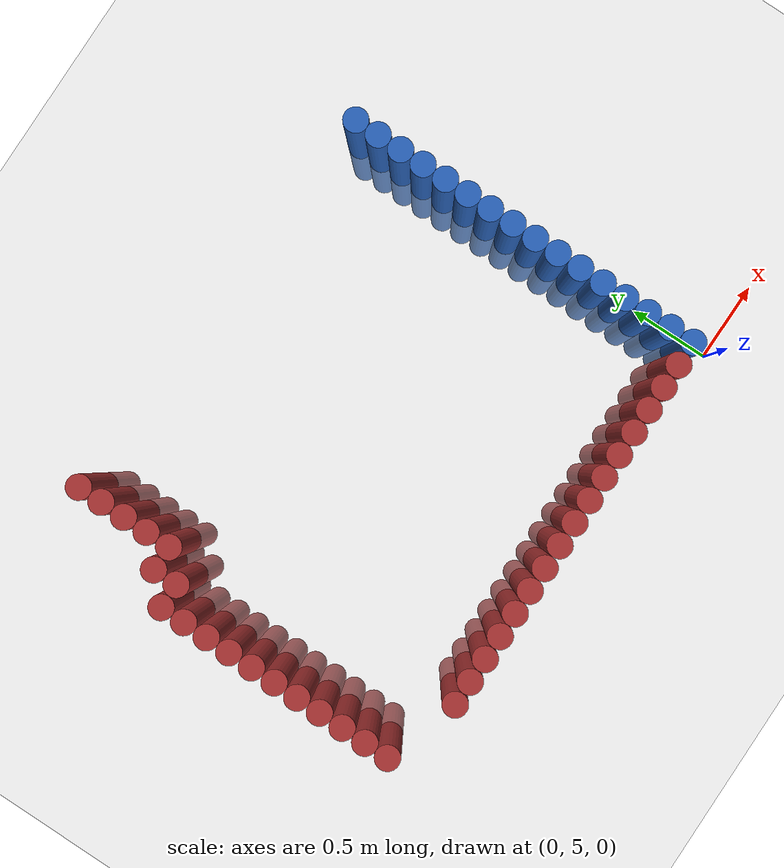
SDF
<sdf version="1.6">
 <world name="default">
  <model name="ground_plane">
   <static>1</static>
   <link name="link">
    <collision name="collision">
     <geometry><plane><normal>0 0 1</normal><size>100 100</size></plane></geometry>
     <surface><friction><ode><mu>100</mu><mu2>50</mu2></ode></friction></surface>
    </collision>
    <visual name="visual">
     <cast_shadows>0</cast_shadows>
     <geometry><plane><normal>0 0 1</normal><size>100 100</size></plane></geometry>
     <material>
      <script><uri>file://media/materials/scripts/gazebo.material</uri><name>Gazebo/Grey</name></script>
     </material>
    </visual>
   </link>
  </model>
  <model name="unit_cylinder_258">
   <static>1</static>
   <pose>-2.925000 5.325000 0.000000 0.000000 0.000000 0.000000</pose>
   <link name="link">
    <inertial>
     <mass>1</mass>
     <inertia><ixx>0.145833</ixx><ixy>0</ixy><ixz>0</ixz><iyy>0.145833</iyy><iyz>0</iyz><izz>0.125</izz></inertia>
    </inertial>
    <collision name="collision">
     <geometry><cylinder><radius>0.075000</radius><length>1</length></cylinder></geometry>
    </collision>
    <visual name="visual">
     <geometry><cylinder><radius>0.075000</radius><length>1</length></cylinder></geometry>
     <material>
      <ambient>0.648000 0.192000 0.192000 1</ambient>
      <diffuse>0.648000 0.192000 0.192000 1</diffuse>
     </material>
     <material>
      <script><name>Gazebo/Grey</name><uri>file://media/materials/scripts/gazebo.material</uri></script>
     </material>
    </visual>
   </link>
  </model>
  <model name="unit_cylinder_259">
   <static>1</static>
   <pose>-2.925000 5.475000 0.000000 0.000000 0.000000 0.000000</pose>
   <link name="link">
    <inertial>
     <mass>1</mass>
     <inertia><ixx>0.145833</ixx><ixy>0</ixy><ixz>0</ixz><iyy>0.145833</iyy><iyz>0</iyz><izz>0.125</izz></inertia>
    </inertial>
    <collision name="collision">
     <geometry><cylinder><radius>0.075000</radius><length>1</length></cylinder></geometry>
    </collision>
    <visual name="visual">
     <geometry><cylinder><radius>0.075000</radius><length>1</length></cylinder></geometry>
     <material>
      <ambient>0.648000 0.192000 0.192000 1</ambient>
      <diffuse>0.648000 0.192000 0.192000 1</diffuse>
     </material>
     <material>
      <script><name>Gazebo/Grey</name><uri>file://media/materials/scripts/gazebo.material</uri></script>
     </material>
    </visual>
   </link>
  </model>
  <model name="unit_cylinder_260">
   <static>1</static>
   <pose>-2.925000 5.625000 0.000000 0.000000 0.000000 0.000000</pose>
   <link name="link">
    <inertial>
     <mass>1</mass>
     <inertia><ixx>0.145833</ixx><ixy>0</ixy><ixz>0</ixz><iyy>0.145833</iyy><iyz>0</iyz><izz>0.125</izz></inertia>
    </inertial>
    <collision name="collision">
     <geometry><cylinder><radius>0.075000</radius><length>1</length></cylinder></geometry>
    </collision>
    <visual name="visual">
     <geometry><cylinder><radius>0.075000</radius><length>1</length></cylinder></geometry>
     <material>
      <ambient>0.648000 0.192000 0.192000 1</ambient>
      <diffuse>0.648000 0.192000 0.192000 1</diffuse>
     </material>
     <material>
      <script><name>Gazebo/Grey</name><uri>file://media/materials/scripts/gazebo.material</uri></script>
     </material>
    </visual>
   </link>
  </model>
  <model name="unit_cylinder_261">
   <static>1</static>
   <pose>-2.925000 5.775000 0.000000 0.000000 0.000000 0.000000</pose>
   <link name="link">
    <inertial>
     <mass>1</mass>
     <inertia><ixx>0.145833</ixx><ixy>0</ixy><ixz>0</ixz><iyy>0.145833</iyy><iyz>0</iyz><izz>0.125</izz></inertia>
    </inertial>
    <collision name="collision">
     <geometry><cylinder><radius>0.075000</radius><length>1</length></cylinder></geometry>
    </collision>
    <visual name="visual">
     <geometry><cylinder><radius>0.075000</radius><length>1</length></cylinder></geometry>
     <material>
      <ambient>0.648000 0.192000 0.192000 1</ambient>
      <diffuse>0.648000 0.192000 0.192000 1</diffuse>
     </material>
     <material>
      <script><name>Gazebo/Grey</name><uri>file://media/materials/scripts/gazebo.material</uri></script>
     </material>
    </visual>
   </link>
  </model>
  <model name="unit_cylinder_262">
   <static>1</static>
   <pose>-2.925000 5.925000 0.000000 0.000000 0.000000 0.000000</pose>
   <link name="link">
    <inertial>
     <mass>1</mass>
     <inertia><ixx>0.145833</ixx><ixy>0</ixy><ixz>0</ixz><iyy>0.145833</iyy><iyz>0</iyz><izz>0.125</izz></inertia>
    </inertial>
    <collision name="collision">
     <geometry><cylinder><radius>0.075000</radius><length>1</length></cylinder></geometry>
    </collision>
    <visual name="visual">
     <geometry><cylinder><radius>0.075000</radius><length>1</length></cylinder></geometry>
     <material>
      <ambient>0.648000 0.192000 0.192000 1</ambient>
      <diffuse>0.648000 0.192000 0.192000 1</diffuse>
     </material>
     <material>
      <script><name>Gazebo/Grey</name><uri>file://media/materials/scripts/gazebo.material</uri></script>
     </material>
    </visual>
   </link>
  </model>
  <model name="unit_cylinder_263">
   <static>1</static>
   <pose>-2.925000 6.075000 0.000000 0.000000 0.000000 0.000000</pose>
   <link name="link">
    <inertial>
     <mass>1</mass>
     <inertia><ixx>0.145833</ixx><ixy>0</ixy><ixz>0</ixz><iyy>0.145833</iyy><iyz>0</iyz><izz>0.125</izz></inertia>
    </inertial>
    <collision name="collision">
     <geometry><cylinder><radius>0.075000</radius><length>1</length></cylinder></geometry>
    </collision>
    <visual name="visual">
     <geometry><cylinder><radius>0.075000</radius><length>1</length></cylinder></geometry>
     <material>
      <ambient>0.648000 0.192000 0.192000 1</ambient>
      <diffuse>0.648000 0.192000 0.192000 1</diffuse>
     </material>
     <material>
      <script><name>Gazebo/Grey</name><uri>file://media/materials/scripts/gazebo.material</uri></script>
     </material>
    </visual>
   </link>
  </model>
  <model name="unit_cylinder_264">
   <static>1</static>
   <pose>-2.925000 6.225000 0.000000 0.000000 0.000000 0.000000</pose>
   <link name="link">
    <inertial>
     <mass>1</mass>
     <inertia><ixx>0.145833</ixx><ixy>0</ixy><ixz>0</ixz><iyy>0.145833</iyy><iyz>0</iyz><izz>0.125</izz></inertia>
    </inertial>
    <collision name="collision">
     <geometry><cylinder><radius>0.075000</radius><length>1</length></cylinder></geometry>
    </collision>
    <visual name="visual">
     <geometry><cylinder><radius>0.075000</radius><length>1</length></cylinder></geometry>
     <material>
      <ambient>0.648000 0.192000 0.192000 1</ambient>
      <diffuse>0.648000 0.192000 0.192000 1</diffuse>
     </material>
     <material>
      <script><name>Gazebo/Grey</name><uri>file://media/materials/scripts/gazebo.material</uri></script>
     </material>
    </visual>
   </link>
  </model>
  <model name="unit_cylinder_265">
   <static>1</static>
   <pose>-2.925000 6.375000 0.000000 0.000000 0.000000 0.000000</pose>
   <link name="link">
    <inertial>
     <mass>1</mass>
     <inertia><ixx>0.145833</ixx><ixy>0</ixy><ixz>0</ixz><iyy>0.145833</iyy><iyz>0</iyz><izz>0.125</izz></inertia>
    </inertial>
    <collision name="collision">
     <geometry><cylinder><radius>0.075000</radius><length>1</length></cylinder></geometry>
    </collision>
    <visual name="visual">
     <geometry><cylinder><radius>0.075000</radius><length>1</length></cylinder></geometry>
     <material>
      <ambient>0.648000 0.192000 0.192000 1</ambient>
      <diffuse>0.648000 0.192000 0.192000 1</diffuse>
     </material>
     <material>
      <script><name>Gazebo/Grey</name><uri>file://media/materials/scripts/gazebo.material</uri></script>
     </material>
    </visual>
   </link>
  </model>
  <model name="unit_cylinder_266">
   <static>1</static>
   <pose>-2.925000 6.525000 0.000000 0.000000 0.000000 0.000000</pose>
   <link name="link">
    <inertial>
     <mass>1</mass>
     <inertia><ixx>0.145833</ixx><ixy>0</ixy><ixz>0</ixz><iyy>0.145833</iyy><iyz>0</iyz><izz>0.125</izz></inertia>
    </inertial>
    <collision name="collision">
     <geometry><cylinder><radius>0.075000</radius><length>1</length></cylinder></geometry>
    </collision>
    <visual name="visual">
     <geometry><cylinder><radius>0.075000</radius><length>1</length></cylinder></geometry>
     <material>
      <ambient>0.648000 0.192000 0.192000 1</ambient>
      <diffuse>0.648000 0.192000 0.192000 1</diffuse>
     </material>
     <material>
      <script><name>Gazebo/Grey</name><uri>file://media/materials/scripts/gazebo.material</uri></script>
     </material>
    </visual>
   </link>
  </model>
  <model name="unit_cylinder_267">
   <static>1</static>
   <pose>-2.925000 6.675000 0.000000 0.000000 0.000000 0.000000</pose>
   <link name="link">
    <inertial>
     <mass>1</mass>
     <inertia><ixx>0.145833</ixx><ixy>0</ixy><ixz>0</ixz><iyy>0.145833</iyy><iyz>0</iyz><izz>0.125</izz></inertia>
    </inertial>
    <collision name="collision">
     <geometry><cylinder><radius>0.075000</radius><length>1</length></cylinder></geometry>
    </collision>
    <visual name="visual">
     <geometry><cylinder><radius>0.075000</radius><length>1</length></cylinder></geometry>
     <material>
      <ambient>0.648000 0.192000 0.192000 1</ambient>
      <diffuse>0.648000 0.192000 0.192000 1</diffuse>
     </material>
     <material>
      <script><name>Gazebo/Grey</name><uri>file://media/materials/scripts/gazebo.material</uri></script>
     </material>
    </visual>
   </link>
  </model>
  <model name="unit_cylinder_268">
   <static>1</static>
   <pose>-2.925000 6.825000 0.000000 0.000000 0.000000 0.000000</pose>
   <link name="link">
    <inertial>
     <mass>1</mass>
     <inertia><ixx>0.145833</ixx><ixy>0</ixy><ixz>0</ixz><iyy>0.145833</iyy><iyz>0</iyz><izz>0.125</izz></inertia>
    </inertial>
    <collision name="collision">
     <geometry><cylinder><radius>0.075000</radius><length>1</length></cylinder></geometry>
    </collision>
    <visual name="visual">
     <geometry><cylinder><radius>0.075000</radius><length>1</length></cylinder></geometry>
     <material>
      <ambient>0.648000 0.192000 0.192000 1</ambient>
      <diffuse>0.648000 0.192000 0.192000 1</diffuse>
     </material>
     <material>
      <script><name>Gazebo/Grey</name><uri>file://media/materials/scripts/gazebo.material</uri></script>
     </material>
    </visual>
   </link>
  </model>
  <model name="unit_cylinder_270">
   <static>1</static>
   <pose>-2.775000 6.825000 0.000000 0.000000 0.000000 0.000000</pose>
   <link name="link">
    <inertial>
     <mass>1</mass>
     <inertia><ixx>0.145833</ixx><ixy>0</ixy><ixz>0</ixz><iyy>0.145833</iyy><iyz>0</iyz><izz>0.125</izz></inertia>
    </inertial>
    <collision name="collision">
     <geometry><cylinder><radius>0.075000</radius><length>1</length></cylinder></geometry>
    </collision>
    <visual name="visual">
     <geometry><cylinder><radius>0.075000</radius><length>1</length></cylinder></geometry>
     <material>
      <ambient>0.648000 0.192000 0.192000 1</ambient>
      <diffuse>0.648000 0.192000 0.192000 1</diffuse>
     </material>
     <material>
      <script><name>Gazebo/Grey</name><uri>file://media/materials/scripts/gazebo.material</uri></script>
     </material>
    </visual>
   </link>
  </model>
  <model name="unit_cylinder_271">
   <static>1</static>
   <pose>-2.775000 6.975000 0.000000 0.000000 0.000000 0.000000</pose>
   <link name="link">
    <inertial>
     <mass>1</mass>
     <inertia><ixx>0.145833</ixx><ixy>0</ixy><ixz>0</ixz><iyy>0.145833</iyy><iyz>0</iyz><izz>0.125</izz></inertia>
    </inertial>
    <collision name="collision">
     <geometry><cylinder><radius>0.075000</radius><length>1</length></cylinder></geometry>
    </collision>
    <visual name="visual">
     <geometry><cylinder><radius>0.075000</radius><length>1</length></cylinder></geometry>
     <material>
      <ambient>0.648000 0.192000 0.192000 1</ambient>
      <diffuse>0.648000 0.192000 0.192000 1</diffuse>
     </material>
     <material>
      <script><name>Gazebo/Grey</name><uri>file://media/materials/scripts/gazebo.material</uri></script>
     </material>
    </visual>
   </link>
  </model>
  <model name="unit_cylinder_273">
   <static>1</static>
   <pose>-2.625000 6.975000 0.000000 0.000000 0.000000 0.000000</pose>
   <link name="link">
    <inertial>
     <mass>1</mass>
     <inertia><ixx>0.145833</ixx><ixy>0</ixy><ixz>0</ixz><iyy>0.145833</iyy><iyz>0</iyz><izz>0.125</izz></inertia>
    </inertial>
    <collision name="collision">
     <geometry><cylinder><radius>0.075000</radius><length>1</length></cylinder></geometry>
    </collision>
    <visual name="visual">
     <geometry><cylinder><radius>0.075000</radius><length>1</length></cylinder></geometry>
     <material>
      <ambient>0.648000 0.192000 0.192000 1</ambient>
      <diffuse>0.648000 0.192000 0.192000 1</diffuse>
     </material>
     <material>
      <script><name>Gazebo/Grey</name><uri>file://media/materials/scripts/gazebo.material</uri></script>
     </material>
    </visual>
   </link>
  </model>
  <model name="unit_cylinder_274">
   <static>1</static>
   <pose>-2.625000 7.125000 0.000000 0.000000 0.000000 0.000000</pose>
   <link name="link">
    <inertial>
     <mass>1</mass>
     <inertia><ixx>0.145833</ixx><ixy>0</ixy><ixz>0</ixz><iyy>0.145833</iyy><iyz>0</iyz><izz>0.125</izz></inertia>
    </inertial>
    <collision name="collision">
     <geometry><cylinder><radius>0.075000</radius><length>1</length></cylinder></geometry>
    </collision>
    <visual name="visual">
     <geometry><cylinder><radius>0.075000</radius><length>1</length></cylinder></geometry>
     <material>
      <ambient>0.648000 0.192000 0.192000 1</ambient>
      <diffuse>0.648000 0.192000 0.192000 1</diffuse>
     </material>
     <material>
      <script><name>Gazebo/Grey</name><uri>file://media/materials/scripts/gazebo.material</uri></script>
     </material>
    </visual>
   </link>
  </model>
  <model name="unit_cylinder_275">
   <static>1</static>
   <pose>-2.625000 7.275000 0.000000 0.000000 0.000000 0.000000</pose>
   <link name="link">
    <inertial>
     <mass>1</mass>
     <inertia><ixx>0.145833</ixx><ixy>0</ixy><ixz>0</ixz><iyy>0.145833</iyy><iyz>0</iyz><izz>0.125</izz></inertia>
    </inertial>
    <collision name="collision">
     <geometry><cylinder><radius>0.075000</radius><length>1</length></cylinder></geometry>
    </collision>
    <visual name="visual">
     <geometry><cylinder><radius>0.075000</radius><length>1</length></cylinder></geometry>
     <material>
      <ambient>0.648000 0.192000 0.192000 1</ambient>
      <diffuse>0.648000 0.192000 0.192000 1</diffuse>
     </material>
     <material>
      <script><name>Gazebo/Grey</name><uri>file://media/materials/scripts/gazebo.material</uri></script>
     </material>
    </visual>
   </link>
  </model>
  <model name="unit_cylinder_276">
   <static>1</static>
   <pose>-2.625000 7.425000 0.000000 0.000000 0.000000 0.000000</pose>
   <link name="link">
    <inertial>
     <mass>1</mass>
     <inertia><ixx>0.145833</ixx><ixy>0</ixy><ixz>0</ixz><iyy>0.145833</iyy><iyz>0</iyz><izz>0.125</izz></inertia>
    </inertial>
    <collision name="collision">
     <geometry><cylinder><radius>0.075000</radius><length>1</length></cylinder></geometry>
    </collision>
    <visual name="visual">
     <geometry><cylinder><radius>0.075000</radius><length>1</length></cylinder></geometry>
     <material>
      <ambient>0.648000 0.192000 0.192000 1</ambient>
      <diffuse>0.648000 0.192000 0.192000 1</diffuse>
     </material>
     <material>
      <script><name>Gazebo/Grey</name><uri>file://media/materials/scripts/gazebo.material</uri></script>
     </material>
    </visual>
   </link>
  </model>
  <model name="unit_cylinder_277">
   <static>1</static>
   <pose>-2.625000 7.575000 0.000000 0.000000 0.000000 0.000000</pose>
   <link name="link">
    <inertial>
     <mass>1</mass>
     <inertia><ixx>0.145833</ixx><ixy>0</ixy><ixz>0</ixz><iyy>0.145833</iyy><iyz>0</iyz><izz>0.125</izz></inertia>
    </inertial>
    <collision name="collision">
     <geometry><cylinder><radius>0.075000</radius><length>1</length></cylinder></geometry>
    </collision>
    <visual name="visual">
     <geometry><cylinder><radius>0.075000</radius><length>1</length></cylinder></geometry>
     <material>
      <ambient>0.648000 0.192000 0.192000 1</ambient>
      <diffuse>0.648000 0.192000 0.192000 1</diffuse>
     </material>
     <material>
      <script><name>Gazebo/Grey</name><uri>file://media/materials/scripts/gazebo.material</uri></script>
     </material>
    </visual>
   </link>
  </model>
  <model name="unit_cylinder_291">
   <static>1</static>
   <pose>-2.475000 5.175000 0.000000 0.000000 0.000000 0.000000</pose>
   <link name="link">
    <inertial>
     <mass>1</mass>
     <inertia><ixx>0.145833</ixx><ixy>0</ixy><ixz>0</ixz><iyy>0.145833</iyy><iyz>0</iyz><izz>0.125</izz></inertia>
    </inertial>
    <collision name="collision">
     <geometry><cylinder><radius>0.075000</radius><length>1</length></cylinder></geometry>
    </collision>
    <visual name="visual">
     <geometry><cylinder><radius>0.075000</radius><length>1</length></cylinder></geometry>
     <material>
      <ambient>0.648000 0.192000 0.192000 1</ambient>
      <diffuse>0.648000 0.192000 0.192000 1</diffuse>
     </material>
     <material>
      <script><name>Gazebo/Grey</name><uri>file://media/materials/scripts/gazebo.material</uri></script>
     </material>
    </visual>
   </link>
  </model>
  <model name="unit_cylinder_293">
   <static>1</static>
   <pose>-2.325000 5.175000 0.000000 0.000000 0.000000 0.000000</pose>
   <link name="link">
    <inertial>
     <mass>1</mass>
     <inertia><ixx>0.145833</ixx><ixy>0</ixy><ixz>0</ixz><iyy>0.145833</iyy><iyz>0</iyz><izz>0.125</izz></inertia>
    </inertial>
    <collision name="collision">
     <geometry><cylinder><radius>0.075000</radius><length>1</length></cylinder></geometry>
    </collision>
    <visual name="visual">
     <geometry><cylinder><radius>0.075000</radius><length>1</length></cylinder></geometry>
     <material>
      <ambient>0.648000 0.192000 0.192000 1</ambient>
      <diffuse>0.648000 0.192000 0.192000 1</diffuse>
     </material>
     <material>
      <script><name>Gazebo/Grey</name><uri>file://media/materials/scripts/gazebo.material</uri></script>
     </material>
    </visual>
   </link>
  </model>
  <model name="unit_cylinder_295">
   <static>1</static>
   <pose>-2.175000 5.175000 0.000000 0.000000 0.000000 0.000000</pose>
   <link name="link">
    <inertial>
     <mass>1</mass>
     <inertia><ixx>0.145833</ixx><ixy>0</ixy><ixz>0</ixz><iyy>0.145833</iyy><iyz>0</iyz><izz>0.125</izz></inertia>
    </inertial>
    <collision name="collision">
     <geometry><cylinder><radius>0.075000</radius><length>1</length></cylinder></geometry>
    </collision>
    <visual name="visual">
     <geometry><cylinder><radius>0.075000</radius><length>1</length></cylinder></geometry>
     <material>
      <ambient>0.648000 0.192000 0.192000 1</ambient>
      <diffuse>0.648000 0.192000 0.192000 1</diffuse>
     </material>
     <material>
      <script><name>Gazebo/Grey</name><uri>file://media/materials/scripts/gazebo.material</uri></script>
     </material>
    </visual>
   </link>
  </model>
  <model name="unit_cylinder_297">
   <static>1</static>
   <pose>-2.025000 5.175000 0.000000 0.000000 0.000000 0.000000</pose>
   <link name="link">
    <inertial>
     <mass>1</mass>
     <inertia><ixx>0.145833</ixx><ixy>0</ixy><ixz>0</ixz><iyy>0.145833</iyy><iyz>0</iyz><izz>0.125</izz></inertia>
    </inertial>
    <collision name="collision">
     <geometry><cylinder><radius>0.075000</radius><length>1</length></cylinder></geometry>
    </collision>
    <visual name="visual">
     <geometry><cylinder><radius>0.075000</radius><length>1</length></cylinder></geometry>
     <material>
      <ambient>0.648000 0.192000 0.192000 1</ambient>
      <diffuse>0.648000 0.192000 0.192000 1</diffuse>
     </material>
     <material>
      <script><name>Gazebo/Grey</name><uri>file://media/materials/scripts/gazebo.material</uri></script>
     </material>
    </visual>
   </link>
  </model>
  <model name="unit_cylinder_299">
   <static>1</static>
   <pose>-1.875000 5.175000 0.000000 0.000000 0.000000 0.000000</pose>
   <link name="link">
    <inertial>
     <mass>1</mass>
     <inertia><ixx>0.145833</ixx><ixy>0</ixy><ixz>0</ixz><iyy>0.145833</iyy><iyz>0</iyz><izz>0.125</izz></inertia>
    </inertial>
    <collision name="collision">
     <geometry><cylinder><radius>0.075000</radius><length>1</length></cylinder></geometry>
    </collision>
    <visual name="visual">
     <geometry><cylinder><radius>0.075000</radius><length>1</length></cylinder></geometry>
     <material>
      <ambient>0.648000 0.192000 0.192000 1</ambient>
      <diffuse>0.648000 0.192000 0.192000 1</diffuse>
     </material>
     <material>
      <script><name>Gazebo/Grey</name><uri>file://media/materials/scripts/gazebo.material</uri></script>
     </material>
    </visual>
   </link>
  </model>
  <model name="unit_cylinder_301">
   <static>1</static>
   <pose>-1.725000 5.175000 0.000000 0.000000 0.000000 0.000000</pose>
   <link name="link">
    <inertial>
     <mass>1</mass>
     <inertia><ixx>0.145833</ixx><ixy>0</ixy><ixz>0</ixz><iyy>0.145833</iyy><iyz>0</iyz><izz>0.125</izz></inertia>
    </inertial>
    <collision name="collision">
     <geometry><cylinder><radius>0.075000</radius><length>1</length></cylinder></geometry>
    </collision>
    <visual name="visual">
     <geometry><cylinder><radius>0.075000</radius><length>1</length></cylinder></geometry>
     <material>
      <ambient>0.648000 0.192000 0.192000 1</ambient>
      <diffuse>0.648000 0.192000 0.192000 1</diffuse>
     </material>
     <material>
      <script><name>Gazebo/Grey</name><uri>file://media/materials/scripts/gazebo.material</uri></script>
     </material>
    </visual>
   </link>
  </model>
  <model name="unit_cylinder_303">
   <static>1</static>
   <pose>-1.575000 5.175000 0.000000 0.000000 0.000000 0.000000</pose>
   <link name="link">
    <inertial>
     <mass>1</mass>
     <inertia><ixx>0.145833</ixx><ixy>0</ixy><ixz>0</ixz><iyy>0.145833</iyy><iyz>0</iyz><izz>0.125</izz></inertia>
    </inertial>
    <collision name="collision">
     <geometry><cylinder><radius>0.075000</radius><length>1</length></cylinder></geometry>
    </collision>
    <visual name="visual">
     <geometry><cylinder><radius>0.075000</radius><length>1</length></cylinder></geometry>
     <material>
      <ambient>0.648000 0.192000 0.192000 1</ambient>
      <diffuse>0.648000 0.192000 0.192000 1</diffuse>
     </material>
     <material>
      <script><name>Gazebo/Grey</name><uri>file://media/materials/scripts/gazebo.material</uri></script>
     </material>
    </visual>
   </link>
  </model>
  <model name="unit_cylinder_305">
   <static>1</static>
   <pose>-1.425000 5.175000 0.000000 0.000000 0.000000 0.000000</pose>
   <link name="link">
    <inertial>
     <mass>1</mass>
     <inertia><ixx>0.145833</ixx><ixy>0</ixy><ixz>0</ixz><iyy>0.145833</iyy><iyz>0</iyz><izz>0.125</izz></inertia>
    </inertial>
    <collision name="collision">
     <geometry><cylinder><radius>0.075000</radius><length>1</length></cylinder></geometry>
    </collision>
    <visual name="visual">
     <geometry><cylinder><radius>0.075000</radius><length>1</length></cylinder></geometry>
     <material>
      <ambient>0.648000 0.192000 0.192000 1</ambient>
      <diffuse>0.648000 0.192000 0.192000 1</diffuse>
     </material>
     <material>
      <script><name>Gazebo/Grey</name><uri>file://media/materials/scripts/gazebo.material</uri></script>
     </material>
    </visual>
   </link>
  </model>
  <model name="unit_cylinder_307">
   <static>1</static>
   <pose>-1.275000 5.175000 0.000000 0.000000 0.000000 0.000000</pose>
   <link name="link">
    <inertial>
     <mass>1</mass>
     <inertia><ixx>0.145833</ixx><ixy>0</ixy><ixz>0</ixz><iyy>0.145833</iyy><iyz>0</iyz><izz>0.125</izz></inertia>
    </inertial>
    <collision name="collision">
     <geometry><cylinder><radius>0.075000</radius><length>1</length></cylinder></geometry>
    </collision>
    <visual name="visual">
     <geometry><cylinder><radius>0.075000</radius><length>1</length></cylinder></geometry>
     <material>
      <ambient>0.648000 0.192000 0.192000 1</ambient>
      <diffuse>0.648000 0.192000 0.192000 1</diffuse>
     </material>
     <material>
      <script><name>Gazebo/Grey</name><uri>file://media/materials/scripts/gazebo.material</uri></script>
     </material>
    </visual>
   </link>
  </model>
  <model name="unit_cylinder_309">
   <static>1</static>
   <pose>-1.125000 5.175000 0.000000 0.000000 0.000000 0.000000</pose>
   <link name="link">
    <inertial>
     <mass>1</mass>
     <inertia><ixx>0.145833</ixx><ixy>0</ixy><ixz>0</ixz><iyy>0.145833</iyy><iyz>0</iyz><izz>0.125</izz></inertia>
    </inertial>
    <collision name="collision">
     <geometry><cylinder><radius>0.075000</radius><length>1</length></cylinder></geometry>
    </collision>
    <visual name="visual">
     <geometry><cylinder><radius>0.075000</radius><length>1</length></cylinder></geometry>
     <material>
      <ambient>0.648000 0.192000 0.192000 1</ambient>
      <diffuse>0.648000 0.192000 0.192000 1</diffuse>
     </material>
     <material>
      <script><name>Gazebo/Grey</name><uri>file://media/materials/scripts/gazebo.material</uri></script>
     </material>
    </visual>
   </link>
  </model>
  <model name="unit_cylinder_311">
   <static>1</static>
   <pose>-0.975000 5.175000 0.000000 0.000000 0.000000 0.000000</pose>
   <link name="link">
    <inertial>
     <mass>1</mass>
     <inertia><ixx>0.145833</ixx><ixy>0</ixy><ixz>0</ixz><iyy>0.145833</iyy><iyz>0</iyz><izz>0.125</izz></inertia>
    </inertial>
    <collision name="collision">
     <geometry><cylinder><radius>0.075000</radius><length>1</length></cylinder></geometry>
    </collision>
    <visual name="visual">
     <geometry><cylinder><radius>0.075000</radius><length>1</length></cylinder></geometry>
     <material>
      <ambient>0.648000 0.192000 0.192000 1</ambient>
      <diffuse>0.648000 0.192000 0.192000 1</diffuse>
     </material>
     <material>
      <script><name>Gazebo/Grey</name><uri>file://media/materials/scripts/gazebo.material</uri></script>
     </material>
    </visual>
   </link>
  </model>
  <model name="unit_cylinder_313">
   <static>1</static>
   <pose>-0.825000 5.175000 0.000000 0.000000 0.000000 0.000000</pose>
   <link name="link">
    <inertial>
     <mass>1</mass>
     <inertia><ixx>0.145833</ixx><ixy>0</ixy><ixz>0</ixz><iyy>0.145833</iyy><iyz>0</iyz><izz>0.125</izz></inertia>
    </inertial>
    <collision name="collision">
     <geometry><cylinder><radius>0.075000</radius><length>1</length></cylinder></geometry>
    </collision>
    <visual name="visual">
     <geometry><cylinder><radius>0.075000</radius><length>1</length></cylinder></geometry>
     <material>
      <ambient>0.648000 0.192000 0.192000 1</ambient>
      <diffuse>0.648000 0.192000 0.192000 1</diffuse>
     </material>
     <material>
      <script><name>Gazebo/Grey</name><uri>file://media/materials/scripts/gazebo.material</uri></script>
     </material>
    </visual>
   </link>
  </model>
  <model name="unit_cylinder_315">
   <static>1</static>
   <pose>-0.675000 5.175000 0.000000 0.000000 0.000000 0.000000</pose>
   <link name="link">
    <inertial>
     <mass>1</mass>
     <inertia><ixx>0.145833</ixx><ixy>0</ixy><ixz>0</ixz><iyy>0.145833</iyy><iyz>0</iyz><izz>0.125</izz></inertia>
    </inertial>
    <collision name="collision">
     <geometry><cylinder><radius>0.075000</radius><length>1</length></cylinder></geometry>
    </collision>
    <visual name="visual">
     <geometry><cylinder><radius>0.075000</radius><length>1</length></cylinder></geometry>
     <material>
      <ambient>0.648000 0.192000 0.192000 1</ambient>
      <diffuse>0.648000 0.192000 0.192000 1</diffuse>
     </material>
     <material>
      <script><name>Gazebo/Grey</name><uri>file://media/materials/scripts/gazebo.material</uri></script>
     </material>
    </visual>
   </link>
  </model>
  <model name="unit_cylinder_317">
   <static>1</static>
   <pose>-0.525000 5.175000 0.000000 0.000000 0.000000 0.000000</pose>
   <link name="link">
    <inertial>
     <mass>1</mass>
     <inertia><ixx>0.145833</ixx><ixy>0</ixy><ixz>0</ixz><iyy>0.145833</iyy><iyz>0</iyz><izz>0.125</izz></inertia>
    </inertial>
    <collision name="collision">
     <geometry><cylinder><radius>0.075000</radius><length>1</length></cylinder></geometry>
    </collision>
    <visual name="visual">
     <geometry><cylinder><radius>0.075000</radius><length>1</length></cylinder></geometry>
     <material>
      <ambient>0.648000 0.192000 0.192000 1</ambient>
      <diffuse>0.648000 0.192000 0.192000 1</diffuse>
     </material>
     <material>
      <script><name>Gazebo/Grey</name><uri>file://media/materials/scripts/gazebo.material</uri></script>
     </material>
    </visual>
   </link>
  </model>
  <model name="unit_cylinder_319">
   <static>1</static>
   <pose>-0.375000 5.175000 0.000000 0.000000 0.000000 0.000000</pose>
   <link name="link">
    <inertial>
     <mass>1</mass>
     <inertia><ixx>0.145833</ixx><ixy>0</ixy><ixz>0</ixz><iyy>0.145833</iyy><iyz>0</iyz><izz>0.125</izz></inertia>
    </inertial>
    <collision name="collision">
     <geometry><cylinder><radius>0.075000</radius><length>1</length></cylinder></geometry>
    </collision>
    <visual name="visual">
     <geometry><cylinder><radius>0.075000</radius><length>1</length></cylinder></geometry>
     <material>
      <ambient>0.648000 0.192000 0.192000 1</ambient>
      <diffuse>0.648000 0.192000 0.192000 1</diffuse>
     </material>
     <material>
      <script><name>Gazebo/Grey</name><uri>file://media/materials/scripts/gazebo.material</uri></script>
     </material>
    </visual>
   </link>
  </model>
  <model name="unit_cylinder_321">
   <static>1</static>
   <pose>-0.225000 5.175000 0.000000 0.000000 0.000000 0.000000</pose>
   <link name="link">
    <inertial>
     <mass>1</mass>
     <inertia><ixx>0.145833</ixx><ixy>0</ixy><ixz>0</ixz><iyy>0.145833</iyy><iyz>0</iyz><izz>0.125</izz></inertia>
    </inertial>
    <collision name="collision">
     <geometry><cylinder><radius>0.075000</radius><length>1</length></cylinder></geometry>
    </collision>
    <visual name="visual">
     <geometry><cylinder><radius>0.075000</radius><length>1</length></cylinder></geometry>
     <material>
      <ambient>0.648000 0.192000 0.192000 1</ambient>
      <diffuse>0.648000 0.192000 0.192000 1</diffuse>
     </material>
     <material>
      <script><name>Gazebo/Grey</name><uri>file://media/materials/scripts/gazebo.material</uri></script>
     </material>
    </visual>
   </link>
  </model>
  <model name="unit_cylinder_323">
   <static>1</static>
   <pose>-0.075000 5.175000 0.000000 0.000000 0.000000 0.000000</pose>
   <link name="link">
    <inertial>
     <mass>1</mass>
     <inertia><ixx>0.145833</ixx><ixy>0</ixy><ixz>0</ixz><iyy>0.145833</iyy><iyz>0</iyz><izz>0.125</izz></inertia>
    </inertial>
    <collision name="collision">
     <geometry><cylinder><radius>0.075000</radius><length>1</length></cylinder></geometry>
    </collision>
    <visual name="visual">
     <geometry><cylinder><radius>0.075000</radius><length>1</length></cylinder></geometry>
     <material>
      <ambient>0.152000 0.379000 0.720000 1</ambient>
      <diffuse>0.152000 0.379000 0.720000 1</diffuse>
     </material>
     <material>
      <script><name>Gazebo/Grey</name><uri>file://media/materials/scripts/gazebo.material</uri></script>
     </material>
    </visual>
   </link>
  </model>
  <model name="unit_cylinder_324">
   <static>1</static>
   <pose>-0.075000 5.325000 0.000000 0.000000 0.000000 0.000000</pose>
   <link name="link">
    <inertial>
     <mass>1</mass>
     <inertia><ixx>0.145833</ixx><ixy>0</ixy><ixz>0</ixz><iyy>0.145833</iyy><iyz>0</iyz><izz>0.125</izz></inertia>
    </inertial>
    <collision name="collision">
     <geometry><cylinder><radius>0.075000</radius><length>1</length></cylinder></geometry>
    </collision>
    <visual name="visual">
     <geometry><cylinder><radius>0.075000</radius><length>1</length></cylinder></geometry>
     <material>
      <ambient>0.152000 0.379000 0.720000 1</ambient>
      <diffuse>0.152000 0.379000 0.720000 1</diffuse>
     </material>
     <material>
      <script><name>Gazebo/Grey</name><uri>file://media/materials/scripts/gazebo.material</uri></script>
     </material>
    </visual>
   </link>
  </model>
  <model name="unit_cylinder_325">
   <static>1</static>
   <pose>-0.075000 5.475000 0.000000 0.000000 0.000000 0.000000</pose>
   <link name="link">
    <inertial>
     <mass>1</mass>
     <inertia><ixx>0.145833</ixx><ixy>0</ixy><ixz>0</ixz><iyy>0.145833</iyy><iyz>0</iyz><izz>0.125</izz></inertia>
    </inertial>
    <collision name="collision">
     <geometry><cylinder><radius>0.075000</radius><length>1</length></cylinder></geometry>
    </collision>
    <visual name="visual">
     <geometry><cylinder><radius>0.075000</radius><length>1</length></cylinder></geometry>
     <material>
      <ambient>0.152000 0.379000 0.720000 1</ambient>
      <diffuse>0.152000 0.379000 0.720000 1</diffuse>
     </material>
     <material>
      <script><name>Gazebo/Grey</name><uri>file://media/materials/scripts/gazebo.material</uri></script>
     </material>
    </visual>
   </link>
  </model>
  <model name="unit_cylinder_326">
   <static>1</static>
   <pose>-0.075000 5.625000 0.000000 0.000000 0.000000 0.000000</pose>
   <link name="link">
    <inertial>
     <mass>1</mass>
     <inertia><ixx>0.145833</ixx><ixy>0</ixy><ixz>0</ixz><iyy>0.145833</iyy><iyz>0</iyz><izz>0.125</izz></inertia>
    </inertial>
    <collision name="collision">
     <geometry><cylinder><radius>0.075000</radius><length>1</length></cylinder></geometry>
    </collision>
    <visual name="visual">
     <geometry><cylinder><radius>0.075000</radius><length>1</length></cylinder></geometry>
     <material>
      <ambient>0.152000 0.379000 0.720000 1</ambient>
      <diffuse>0.152000 0.379000 0.720000 1</diffuse>
     </material>
     <material>
      <script><name>Gazebo/Grey</name><uri>file://media/materials/scripts/gazebo.material</uri></script>
     </material>
    </visual>
   </link>
  </model>
  <model name="unit_cylinder_327">
   <static>1</static>
   <pose>-0.075000 5.775000 0.000000 0.000000 0.000000 0.000000</pose>
   <link name="link">
    <inertial>
     <mass>1</mass>
     <inertia><ixx>0.145833</ixx><ixy>0</ixy><ixz>0</ixz><iyy>0.145833</iyy><iyz>0</iyz><izz>0.125</izz></inertia>
    </inertial>
    <collision name="collision">
     <geometry><cylinder><radius>0.075000</radius><length>1</length></cylinder></geometry>
    </collision>
    <visual name="visual">
     <geometry><cylinder><radius>0.075000</radius><length>1</length></cylinder></geometry>
     <material>
      <ambient>0.152000 0.379000 0.720000 1</ambient>
      <diffuse>0.152000 0.379000 0.720000 1</diffuse>
     </material>
     <material>
      <script><name>Gazebo/Grey</name><uri>file://media/materials/scripts/gazebo.material</uri></script>
     </material>
    </visual>
   </link>
  </model>
  <model name="unit_cylinder_328">
   <static>1</static>
   <pose>-0.075000 5.925000 0.000000 0.000000 0.000000 0.000000</pose>
   <link name="link">
    <inertial>
     <mass>1</mass>
     <inertia><ixx>0.145833</ixx><ixy>0</ixy><ixz>0</ixz><iyy>0.145833</iyy><iyz>0</iyz><izz>0.125</izz></inertia>
    </inertial>
    <collision name="collision">
     <geometry><cylinder><radius>0.075000</radius><length>1</length></cylinder></geometry>
    </collision>
    <visual name="visual">
     <geometry><cylinder><radius>0.075000</radius><length>1</length></cylinder></geometry>
     <material>
      <ambient>0.152000 0.379000 0.720000 1</ambient>
      <diffuse>0.152000 0.379000 0.720000 1</diffuse>
     </material>
     <material>
      <script><name>Gazebo/Grey</name><uri>file://media/materials/scripts/gazebo.material</uri></script>
     </material>
    </visual>
   </link>
  </model>
  <model name="unit_cylinder_329">
   <static>1</static>
   <pose>-0.075000 6.075000 0.000000 0.000000 0.000000 0.000000</pose>
   <link name="link">
    <inertial>
     <mass>1</mass>
     <inertia><ixx>0.145833</ixx><ixy>0</ixy><ixz>0</ixz><iyy>0.145833</iyy><iyz>0</iyz><izz>0.125</izz></inertia>
    </inertial>
    <collision name="collision">
     <geometry><cylinder><radius>0.075000</radius><length>1</length></cylinder></geometry>
    </collision>
    <visual name="visual">
     <geometry><cylinder><radius>0.075000</radius><length>1</length></cylinder></geometry>
     <material>
      <ambient>0.152000 0.379000 0.720000 1</ambient>
      <diffuse>0.152000 0.379000 0.720000 1</diffuse>
     </material>
     <material>
      <script><name>Gazebo/Grey</name><uri>file://media/materials/scripts/gazebo.material</uri></script>
     </material>
    </visual>
   </link>
  </model>
  <model name="unit_cylinder_330">
   <static>1</static>
   <pose>-0.075000 6.225000 0.000000 0.000000 0.000000 0.000000</pose>
   <link name="link">
    <inertial>
     <mass>1</mass>
     <inertia><ixx>0.145833</ixx><ixy>0</ixy><ixz>0</ixz><iyy>0.145833</iyy><iyz>0</iyz><izz>0.125</izz></inertia>
    </inertial>
    <collision name="collision">
     <geometry><cylinder><radius>0.075000</radius><length>1</length></cylinder></geometry>
    </collision>
    <visual name="visual">
     <geometry><cylinder><radius>0.075000</radius><length>1</length></cylinder></geometry>
     <material>
      <ambient>0.152000 0.379000 0.720000 1</ambient>
      <diffuse>0.152000 0.379000 0.720000 1</diffuse>
     </material>
     <material>
      <script><name>Gazebo/Grey</name><uri>file://media/materials/scripts/gazebo.material</uri></script>
     </material>
    </visual>
   </link>
  </model>
  <model name="unit_cylinder_331">
   <static>1</static>
   <pose>-0.075000 6.375000 0.000000 0.000000 0.000000 0.000000</pose>
   <link name="link">
    <inertial>
     <mass>1</mass>
     <inertia><ixx>0.145833</ixx><ixy>0</ixy><ixz>0</ixz><iyy>0.145833</iyy><iyz>0</iyz><izz>0.125</izz></inertia>
    </inertial>
    <collision name="collision">
     <geometry><cylinder><radius>0.075000</radius><length>1</length></cylinder></geometry>
    </collision>
    <visual name="visual">
     <geometry><cylinder><radius>0.075000</radius><length>1</length></cylinder></geometry>
     <material>
      <ambient>0.152000 0.379000 0.720000 1</ambient>
      <diffuse>0.152000 0.379000 0.720000 1</diffuse>
     </material>
     <material>
      <script><name>Gazebo/Grey</name><uri>file://media/materials/scripts/gazebo.material</uri></script>
     </material>
    </visual>
   </link>
  </model>
  <model name="unit_cylinder_332">
   <static>1</static>
   <pose>-0.075000 6.525000 0.000000 0.000000 0.000000 0.000000</pose>
   <link name="link">
    <inertial>
     <mass>1</mass>
     <inertia><ixx>0.145833</ixx><ixy>0</ixy><ixz>0</ixz><iyy>0.145833</iyy><iyz>0</iyz><izz>0.125</izz></inertia>
    </inertial>
    <collision name="collision">
     <geometry><cylinder><radius>0.075000</radius><length>1</length></cylinder></geometry>
    </collision>
    <visual name="visual">
     <geometry><cylinder><radius>0.075000</radius><length>1</length></cylinder></geometry>
     <material>
      <ambient>0.152000 0.379000 0.720000 1</ambient>
      <diffuse>0.152000 0.379000 0.720000 1</diffuse>
     </material>
     <material>
      <script><name>Gazebo/Grey</name><uri>file://media/materials/scripts/gazebo.material</uri></script>
     </material>
    </visual>
   </link>
  </model>
  <model name="unit_cylinder_333">
   <static>1</static>
   <pose>-0.075000 6.675000 0.000000 0.000000 0.000000 0.000000</pose>
   <link name="link">
    <inertial>
     <mass>1</mass>
     <inertia><ixx>0.145833</ixx><ixy>0</ixy><ixz>0</ixz><iyy>0.145833</iyy><iyz>0</iyz><izz>0.125</izz></inertia>
    </inertial>
    <collision name="collision">
     <geometry><cylinder><radius>0.075000</radius><length>1</length></cylinder></geometry>
    </collision>
    <visual name="visual">
     <geometry><cylinder><radius>0.075000</radius><length>1</length></cylinder></geometry>
     <material>
      <ambient>0.152000 0.379000 0.720000 1</ambient>
      <diffuse>0.152000 0.379000 0.720000 1</diffuse>
     </material>
     <material>
      <script><name>Gazebo/Grey</name><uri>file://media/materials/scripts/gazebo.material</uri></script>
     </material>
    </visual>
   </link>
  </model>
  <model name="unit_cylinder_334">
   <static>1</static>
   <pose>-0.075000 6.825000 0.000000 0.000000 0.000000 0.000000</pose>
   <link name="link">
    <inertial>
     <mass>1</mass>
     <inertia><ixx>0.145833</ixx><ixy>0</ixy><ixz>0</ixz><iyy>0.145833</iyy><iyz>0</iyz><izz>0.125</izz></inertia>
    </inertial>
    <collision name="collision">
     <geometry><cylinder><radius>0.075000</radius><length>1</length></cylinder></geometry>
    </collision>
    <visual name="visual">
     <geometry><cylinder><radius>0.075000</radius><length>1</length></cylinder></geometry>
     <material>
      <ambient>0.152000 0.379000 0.720000 1</ambient>
      <diffuse>0.152000 0.379000 0.720000 1</diffuse>
     </material>
     <material>
      <script><name>Gazebo/Grey</name><uri>file://media/materials/scripts/gazebo.material</uri></script>
     </material>
    </visual>
   </link>
  </model>
  <model name="unit_cylinder_335">
   <static>1</static>
   <pose>-0.075000 6.975000 0.000000 0.000000 0.000000 0.000000</pose>
   <link name="link">
    <inertial>
     <mass>1</mass>
     <inertia><ixx>0.145833</ixx><ixy>0</ixy><ixz>0</ixz><iyy>0.145833</iyy><iyz>0</iyz><izz>0.125</izz></inertia>
    </inertial>
    <collision name="collision">
     <geometry><cylinder><radius>0.075000</radius><length>1</length></cylinder></geometry>
    </collision>
    <visual name="visual">
     <geometry><cylinder><radius>0.075000</radius><length>1</length></cylinder></geometry>
     <material>
      <ambient>0.152000 0.379000 0.720000 1</ambient>
      <diffuse>0.152000 0.379000 0.720000 1</diffuse>
     </material>
     <material>
      <script><name>Gazebo/Grey</name><uri>file://media/materials/scripts/gazebo.material</uri></script>
     </material>
    </visual>
   </link>
  </model>
  <model name="unit_cylinder_336">
   <static>1</static>
   <pose>-0.075000 7.125000 0.000000 0.000000 0.000000 0.000000</pose>
   <link name="link">
    <inertial>
     <mass>1</mass>
     <inertia><ixx>0.145833</ixx><ixy>0</ixy><ixz>0</ixz><iyy>0.145833</iyy><iyz>0</iyz><izz>0.125</izz></inertia>
    </inertial>
    <collision name="collision">
     <geometry><cylinder><radius>0.075000</radius><length>1</length></cylinder></geometry>
    </collision>
    <visual name="visual">
     <geometry><cylinder><radius>0.075000</radius><length>1</length></cylinder></geometry>
     <material>
      <ambient>0.152000 0.379000 0.720000 1</ambient>
      <diffuse>0.152000 0.379000 0.720000 1</diffuse>
     </material>
     <material>
      <script><name>Gazebo/Grey</name><uri>file://media/materials/scripts/gazebo.material</uri></script>
     </material>
    </visual>
   </link>
  </model>
  <model name="unit_cylinder_337">
   <static>1</static>
   <pose>-0.075000 7.275000 0.000000 0.000000 0.000000 0.000000</pose>
   <link name="link">
    <inertial>
     <mass>1</mass>
     <inertia><ixx>0.145833</ixx><ixy>0</ixy><ixz>0</ixz><iyy>0.145833</iyy><iyz>0</iyz><izz>0.125</izz></inertia>
    </inertial>
    <collision name="collision">
     <geometry><cylinder><radius>0.075000</radius><length>1</length></cylinder></geometry>
    </collision>
    <visual name="visual">
     <geometry><cylinder><radius>0.075000</radius><length>1</length></cylinder></geometry>
     <material>
      <ambient>0.152000 0.379000 0.720000 1</ambient>
      <diffuse>0.152000 0.379000 0.720000 1</diffuse>
     </material>
     <material>
      <script><name>Gazebo/Grey</name><uri>file://media/materials/scripts/gazebo.material</uri></script>
     </material>
    </visual>
   </link>
  </model>
  <model name="unit_cylinder_338">
   <static>1</static>
   <pose>-0.075000 7.425000 0.000000 0.000000 0.000000 0.000000</pose>
   <link name="link">
    <inertial>
     <mass>1</mass>
     <inertia><ixx>0.145833</ixx><ixy>0</ixy><ixz>0</ixz><iyy>0.145833</iyy><iyz>0</iyz><izz>0.125</izz></inertia>
    </inertial>
    <collision name="collision">
     <geometry><cylinder><radius>0.075000</radius><length>1</length></cylinder></geometry>
    </collision>
    <visual name="visual">
     <geometry><cylinder><radius>0.075000</radius><length>1</length></cylinder></geometry>
     <material>
      <ambient>0.152000 0.379000 0.720000 1</ambient>
      <diffuse>0.152000 0.379000 0.720000 1</diffuse>
     </material>
     <material>
      <script><name>Gazebo/Grey</name><uri>file://media/materials/scripts/gazebo.material</uri></script>
     </material>
    </visual>
   </link>
  </model>
 </world>
</sdf>
